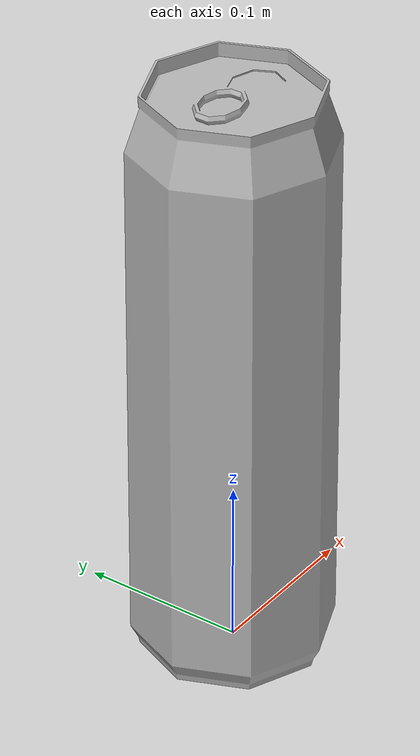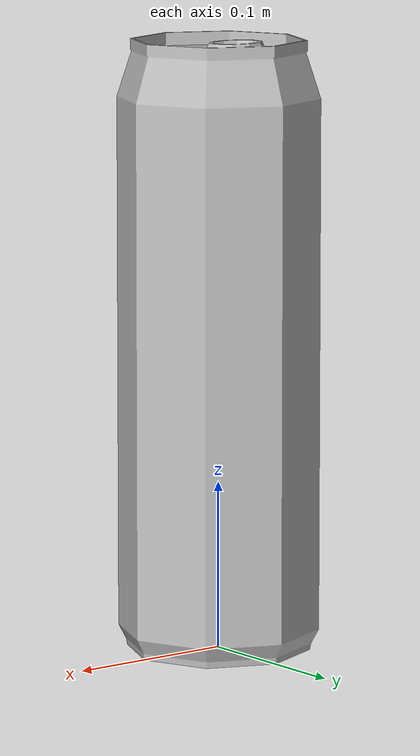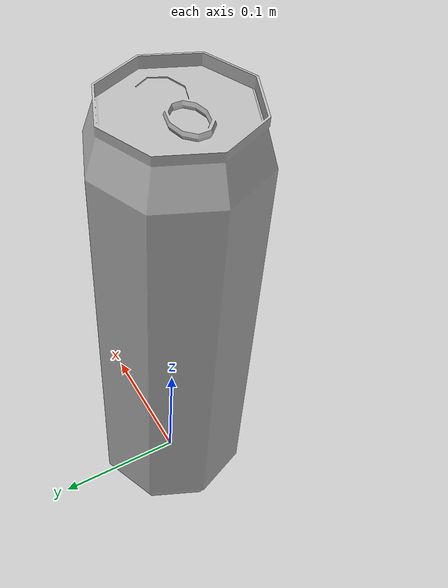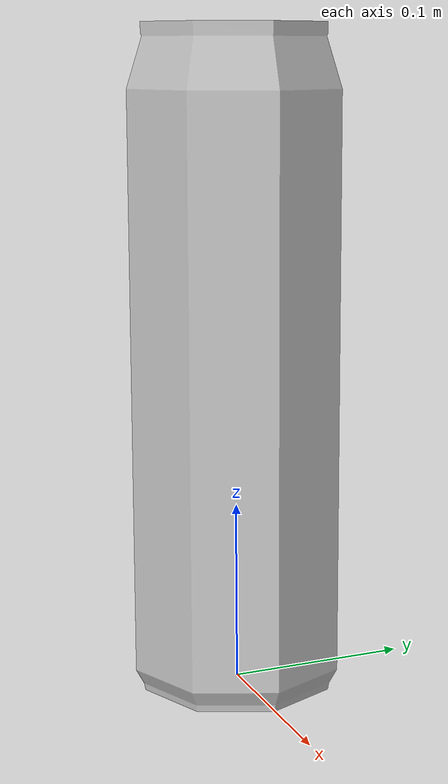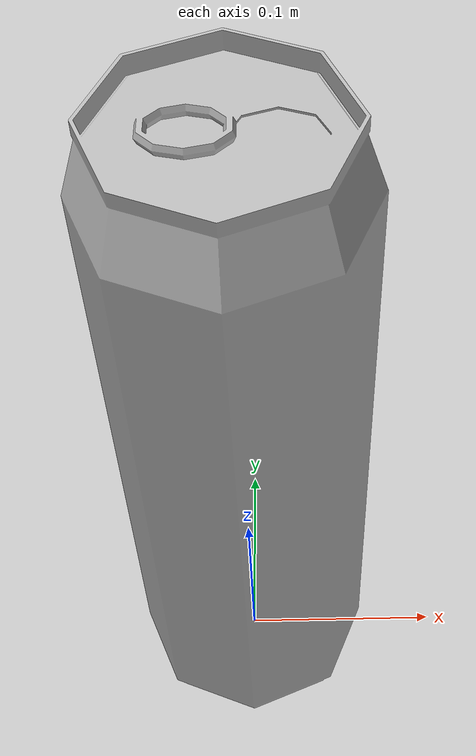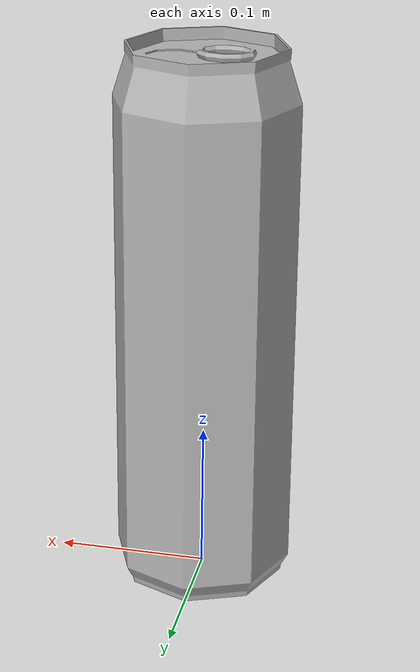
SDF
<?xml version="1.0"?>

<sdf version="1.6">
  <model name='Coke'>
  <plugin filename="gz-sim-contact-system"
          name="gz::sim::systems::Contact">
    </plugin>
    <static>true</static>
    <link name="body">
      <pose>0 0 0 0 0 0</pose>

        <visual name="visual">
          <geometry>
            <mesh>
            <uri>model://Coke/meshes/coke.obj</uri>
            <scale>2 2 2.5</scale>
            </mesh>
          </geometry>
        </visual>

        <collision name="collision">
          <geometry>
            <mesh>
            <scale>2 2 2.5</scale>
            <uri>model://Coke/meshes/coke.obj</uri>
            </mesh>
          </geometry>
        </collision>

        <!-- TODO: Replace with accurate values of mass and inertia -->
        <inertial>
          <mass>1.0</mass>
          <inertia>
            <ixx>0.003366666666666667</ixx>
            <iyy>0.0008666666666666667</iyy>
            <izz>0.0041666666666666675</izz>
          </inertia>
        </inertial>
        <sensor name='sensor_contact' type='contact'>
          <contact>
            <collision>collision</collision>
            <topic>/collision_detect</topic>
          </contact>
          <always_on>1</always_on>
          <update_rate>100</update_rate>
        </sensor>
    </link>
  </model>
</sdf>
